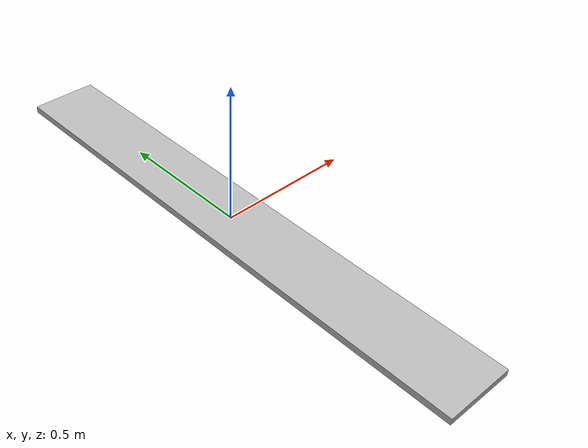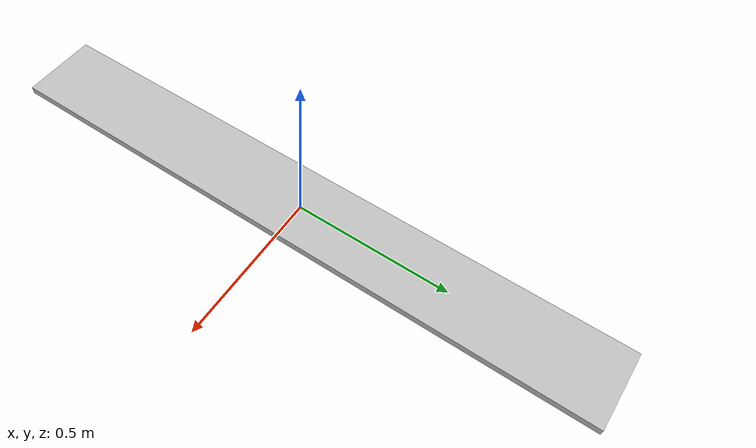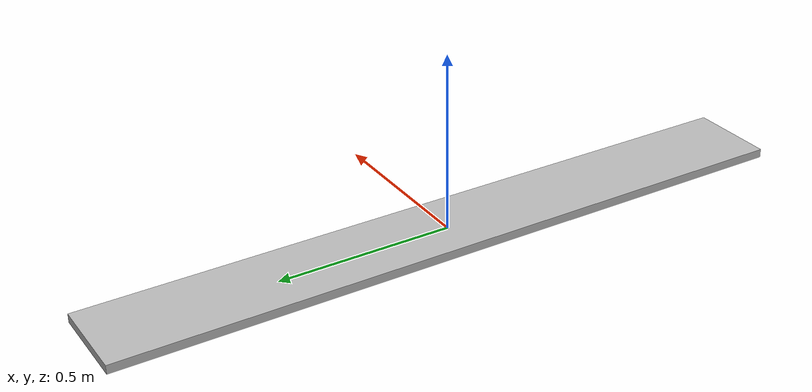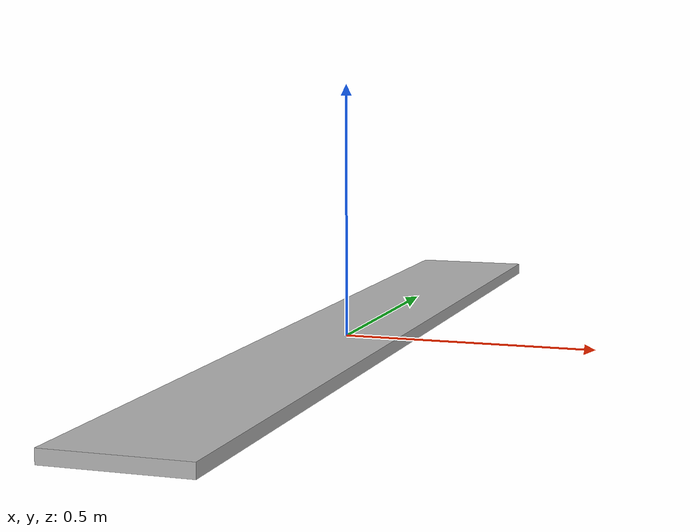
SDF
<?xml version="1.0" ?>
<sdf version="1.5">
  <model name="lane_divider">
    <static>true</static>
    <link name="link">
      <collision name="collision">
        <geometry>
          <box>
            <size>.25 2 .025</size>
          </box>
        </geometry>
      </collision>
      <visual name="visual">
        <cast_shadows>false</cast_shadows>
        <geometry>
          <box>
            <size>.25 2 .025</size>
          </box>
        </geometry>
      </visual>
    </link>
  </model>
</sdf>
